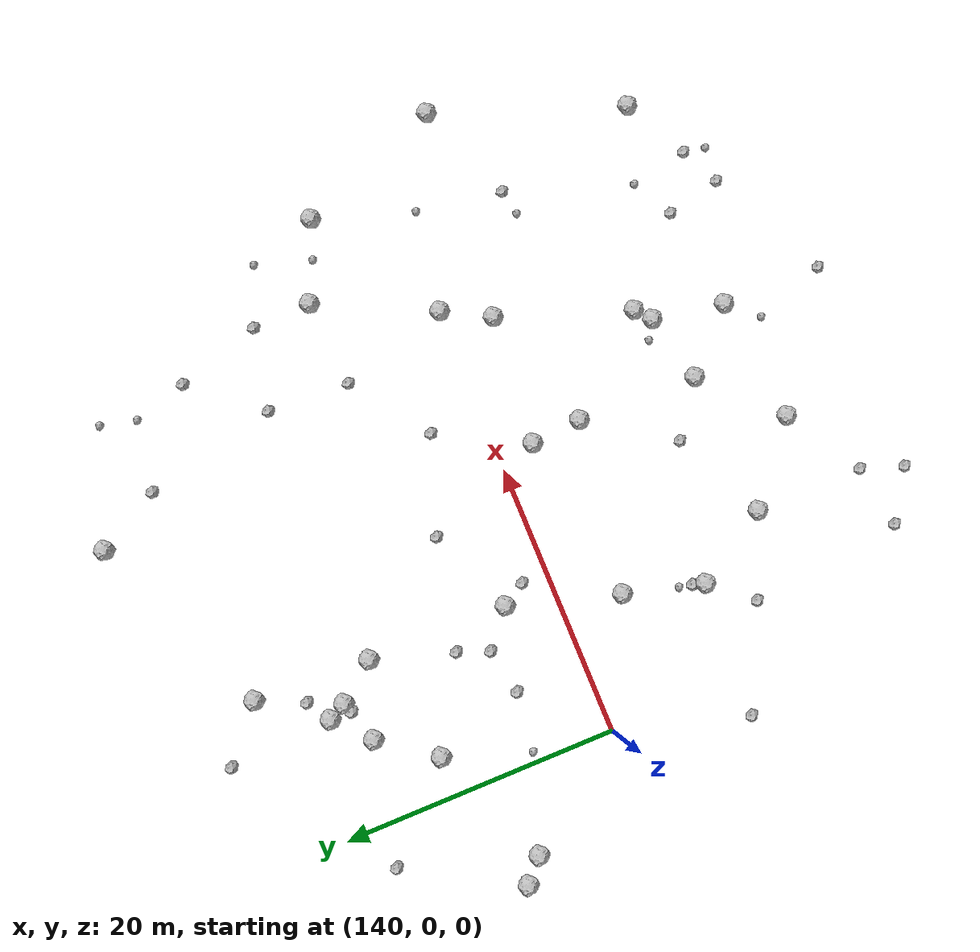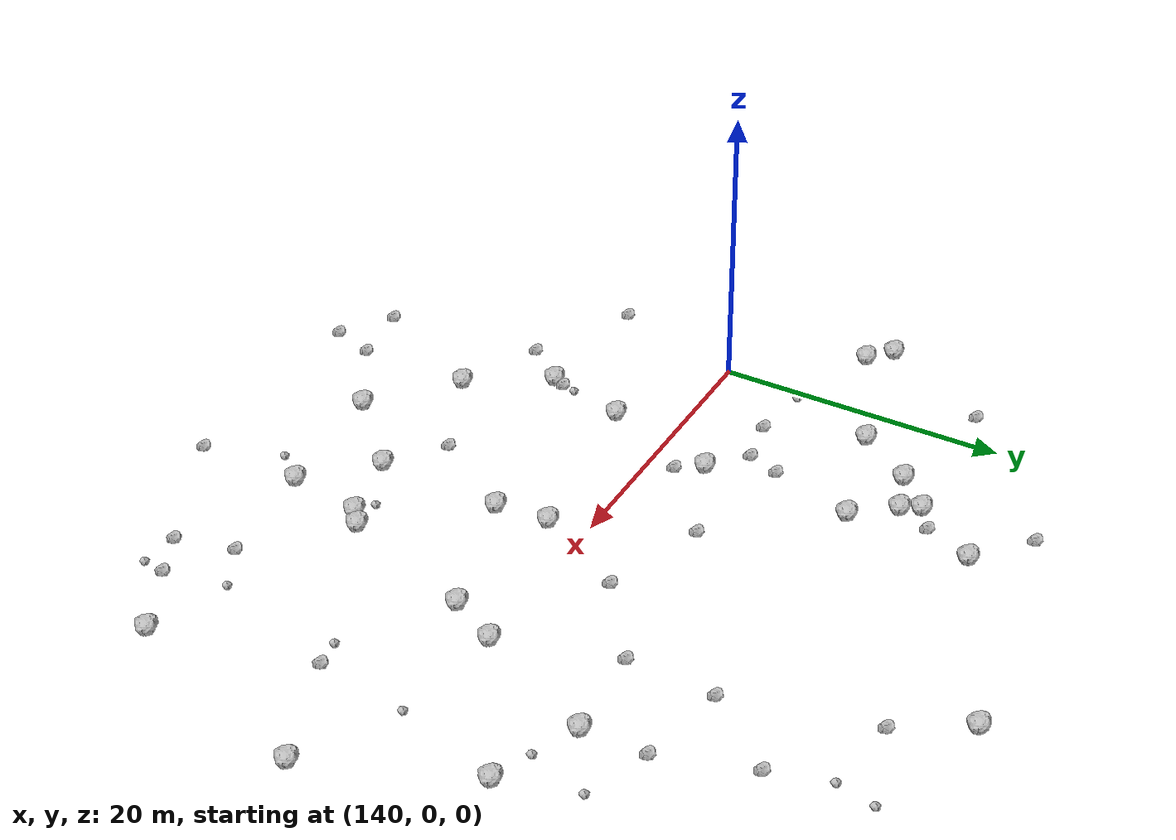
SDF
<sdf version="1.6">
 <world name="default">
  <include><uri>model://sun</uri></include>
  <model name="rock1_4_1">
   <include><uri>model://rock1</uri><pose>148.6461739102524 -4.36706364107064 0.5 0 0 0</pose></include>
  </model>
  <model name="rock1_4_2">
   <include><uri>model://rock1</uri><pose>170.6614396948787 -3.477260027332683 0.5 0 0 0</pose></include>
  </model>
  <model name="rock1_4_3">
   <include><uri>model://rock1</uri><pose>155.9314208944053 -20.248869676097645 0.5 0 0 0</pose></include>
  </model>
  <model name="rock1_4_4">
   <include><uri>model://rock1</uri><pose>151.15916810872514 13.928296508313295 0.5 0 0 0</pose></include>
  </model>
  <model name="rock1_4_5">
   <include><uri>model://rock1</uri><pose>142.97090112769305 11.740795903836585 0.5 0 0 0</pose></include>
  </model>
  <model name="rock1_4_6">
   <include><uri>model://rock1</uri><pose>165.20171888593103 -19.364542322768845 0.5 0 0 0</pose></include>
  </model>
  <model name="rock1_4_7">
   <include><uri>model://rock1</uri><pose>167.25838909542983 -13.126374471076208 0.5 0 0 0</pose></include>
  </model>
  <model name="rock1_4_8">
   <include><uri>model://rock1</uri><pose>150.43335827797142 -15.603983127823945 0.5 0 0 0</pose></include>
  </model>
  <model name="rock1_4_9">
   <include><uri>model://rock1</uri><pose>145.8718455640213 15.66577445789028 0.5 0 0 0</pose></include>
  </model>
  <model name="rock1_4_10">
   <include><uri>model://rock1</uri><pose>148.97669988062748 16.677405084315694 0.5 0 0 0</pose></include>
  </model>
  <model name="rock1_4_11">
   <include><uri>model://rock1</uri><pose>147.07499930409134 -10.104551856533018 0.5 0 0 0</pose></include>
  </model>
  <model name="rock1_4_12">
   <include><uri>model://rock1</uri><pose>134.21081374437435 7.968940170755097 0.5 0 0 0</pose></include>
  </model>
  <model name="rock1_4_13">
   <include><uri>model://rock1</uri><pose>172.53420132046688 -0.042582064448801304 0.5 0 0 0</pose></include>
  </model>
  <model name="rock1_4_14">
   <include><uri>model://rock1</uri><pose>151.55726224825906 22.41313985555429 0.5 0 0 0</pose></include>
  </model>
  <model name="rock1_4_15">
   <include><uri>model://rock1</uri><pose>176.6423506321098 8.508089635333292 0.5 0 0 0</pose></include>
  </model>
  <model name="rock1_4_16">
   <include><uri>model://rock1</uri><pose>148.30778269468723 17.951741223984435 0.5 0 0 0</pose></include>
  </model>
  <model name="rock1_4_17">
   <include><uri>model://rock1</uri><pose>132.63869016670853 9.4168518338766 0.5 0 0 0</pose></include>
  </model>
  <model name="rock1_4_18">
   <include><uri>model://rock1</uri><pose>181.67730218336396 -18.689762296639685 0.5 0 0 0</pose></include>
  </model>
  <model name="rock1_4_19">
   <include><uri>model://rock1</uri><pose>151.0086913722161 3.6304221369396714 0.5 0 0 0</pose></include>
  </model>
  <model name="rock1_4_20">
   <include><uri>model://rock1</uri><pose>182.52761170870244 6.1119456633797355 0.5 0 0 0</pose></include>
  </model>
  <model name="rock1_4_21">
   <include><uri>model://rock1</uri><pose>161.30253396382926 -6.350405087036808 0.5 0 0 0</pose></include>
  </model>
  <model name="rock1_4_22">
   <include><uri>model://rock1</uri><pose>186.80194784242306 -4.733416442653986 0.5 0 0 0</pose></include>
  </model>
  <model name="rock1_4_23">
   <include><uri>model://rock1</uri><pose>165.44359070745907 28.493136932793085 0.5 0 0 0</pose></include>
  </model>
  <model name="rock1_4_24">
   <include><uri>model://rock1</uri><pose>161.01019715202045 -2.6030100805419814 0.5 0 0 0</pose></include>
  </model>
  <model name="rock1_4_25">
   <include><uri>model://rock1</uri><pose>161.02748712036663 -15.249821244326762 0.5 0 0 0</pose></include>
  </model>
  <model name="rock1_4_26">
   <include><uri>model://rock1</uri><pose>166.12035820222644 -14.089738988456295 0.5 0 0 0</pose></include>
  </model>
  <model name="rock2_4_0">
   <include><uri>model://rock2</uri><pose>150.40283354445174 -23.61246532380835 0.3 0 0 0</pose></include>
  </model>
  <model name="rock2_4_1">
   <include><uri>model://rock2</uri><pose>170.38148815886584 14.129951593118065 0.3 0 0 0</pose></include>
  </model>
  <model name="rock2_4_2">
   <include><uri>model://rock2</uri><pose>149.36382234457182 -26.657483187313908 0.3 0 0 0</pose></include>
  </model>
  <model name="rock2_4_3">
   <include><uri>model://rock2</uri><pose>147.8306683793752 25.561950097805223 0.3 0 0 0</pose></include>
  </model>
  <model name="rock2_4_4">
   <include><uri>model://rock2</uri><pose>137.34720406998386 -9.46368609980382 0.3 0 0 0</pose></include>
  </model>
  <model name="rock2_4_5">
   <include><uri>model://rock2</uri><pose>137.11649656005272 17.41405536645904 0.3 0 0 0</pose></include>
  </model>
  <model name="rock2_4_6">
   <include><uri>model://rock2</uri><pose>172.95280441625954 -18.477994943447612 0.3 0 0 0</pose></include>
  </model>
  <model name="rock2_4_7">
   <include><uri>model://rock2</uri><pose>164.44448991235063 3.884213495384799 0.3 0 0 0</pose></include>
  </model>
  <model name="rock2_4_8">
   <include><uri>model://rock2</uri><pose>174.5657175607966 19.149710579810602 0.3 0 0 0</pose></include>
  </model>
  <model name="rock2_4_9">
   <include><uri>model://rock2</uri><pose>165.13539632852383 -26.83600631901075 0.3 0 0 0</pose></include>
  </model>
  <model name="rock2_4_10">
   <include><uri>model://rock2</uri><pose>170.09981913840863 8.039842267819822 0.3 0 0 0</pose></include>
  </model>
  <model name="rock2_4_11">
   <include><uri>model://rock2</uri><pose>148.42634163624817 5.788370758173137 0.3 0 0 0</pose></include>
  </model>
  <model name="rock2_4_12">
   <include><uri>model://rock2</uri><pose>157.35629695631468 6.304432973521315 0.3 0 0 0</pose></include>
  </model>
  <model name="rock2_4_13">
   <include><uri>model://rock2</uri><pose>149.28377499917673 8.057023199591946 0.3 0 0 0</pose></include>
  </model>
  <model name="rock2_4_14">
   <include><uri>model://rock2</uri><pose>173.92737763564185 -22.554304588917063 0.3 0 0 0</pose></include>
  </model>
  <model name="rock2_4_15">
   <include><uri>model://rock2</uri><pose>148.2026343452162 16.418431458790415 0.3 0 0 0</pose></include>
  </model>
  <model name="rock2_4_16">
   <include><uri>model://rock2</uri><pose>145.82857433917988 -24.284660798643994 0.3 0 0 0</pose></include>
  </model>
  <model name="rock2_4_17">
   <include><uri>model://rock2</uri><pose>176.5151976539632 12.910521577187069 0.3 0 0 0</pose></include>
  </model>
  <model name="rock2_4_18">
   <include><uri>model://rock2</uri><pose>144.55734789211027 -13.04140390698241 0.3 0 0 0</pose></include>
  </model>
  <model name="rock2_4_19">
   <include><uri>model://rock2</uri><pose>147.33801871723955 -9.236280259465591 0.3 0 0 0</pose></include>
  </model>
  <model name="rock2_4_20">
   <include><uri>model://rock2</uri><pose>149.9933395743147 19.07628574504509 0.3 0 0 0</pose></include>
  </model>
  <model name="rock2_4_21">
   <include><uri>model://rock2</uri><pose>168.05409330909677 23.924626177699167 0.3 0 0 0</pose></include>
  </model>
  <model name="rock2_4_22">
   <include><uri>model://rock2</uri><pose>152.02304480199135 1.9112367458450592 0.3 0 0 0</pose></include>
  </model>
  <model name="rock2_4_23">
   <include><uri>model://rock2</uri><pose>157.15918857437327 -12.476247191670517 0.3 0 0 0</pose></include>
  </model>
  <model name="rock2_4_24">
   <include><uri>model://rock2</uri><pose>176.85619269512864 -21.186750661663865 0.3 0 0 0</pose></include>
  </model>
  <model name="rock2_4_25">
   <include><uri>model://rock2</uri><pose>179.15554416672757 -7.66098167740758 0.3 0 0 0</pose></include>
  </model>
  <model name="rock2_4_26">
   <include><uri>model://rock2</uri><pose>145.08522855600842 5.148748327691159 0.3 0 0 0</pose></include>
  </model>
  <model name="rock3_4_0">
   <include><uri>model://rock3</uri><pose>173.98702098939103 25.764052011104198 0.2 0 0 0</pose></include>
  </model>
  <model name="rock3_4_1">
   <include><uri>model://rock3</uri><pose>177.1962267377537 -8.053307042916565 0.2 0 0 0</pose></include>
  </model>
  <model name="rock3_4_2">
   <include><uri>model://rock3</uri><pose>147.49284816023248 -8.310349930190068 0.2 0 0 0</pose></include>
  </model>
  <model name="rock3_4_3">
   <include><uri>model://rock3</uri><pose>163.2894272016413 -21.57634523020416 0.2 0 0 0</pose></include>
  </model>
  <model name="rock3_4_4">
   <include><uri>model://rock3</uri><pose>175.9665000893805 -16.91642781318081 0.2 0 0 0</pose></include>
  </model>
  <model name="rock3_4_5">
   <include><uri>model://rock3</uri><pose>176.55647319080342 -22.866314073181933 0.2 0 0 0</pose></include>
  </model>
  <model name="rock3_4_6">
   <include><uri>model://rock3</uri><pose>164.76497862615875 -13.331127688042269 0.2 0 0 0</pose></include>
  </model>
  <model name="rock3_4_7">
   <include><uri>model://rock3</uri><pose>173.36338493996666 23.112818967509128 0.2 0 0 0</pose></include>
  </model>
  <model name="rock3_4_8">
   <include><uri>model://rock3</uri><pose>180.90066175506067 11.217105399572276 0.2 0 0 0</pose></include>
  </model>
  <model name="rock3_4_9">
   <include><uri>model://rock3</uri><pose>180.1357011524431 -1.260308596239902 0.2 0 0 0</pose></include>
  </model>
  <model name="rock3_4_10">
   <include><uri>model://rock3</uri><pose>179.6153790651793 7.089923831266617 0.2 0 0 0</pose></include>
  </model>
  <model name="rock3_4_11">
   <include><uri>model://rock3</uri><pose>140.79522464580276 5.6586693888221475 0.2 0 0 0</pose></include>
  </model>
 </world>
</sdf>
